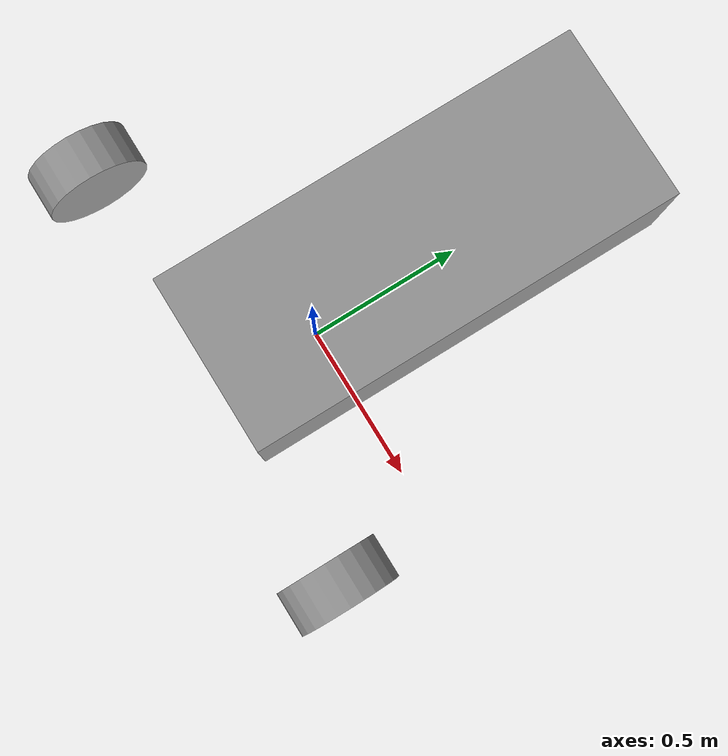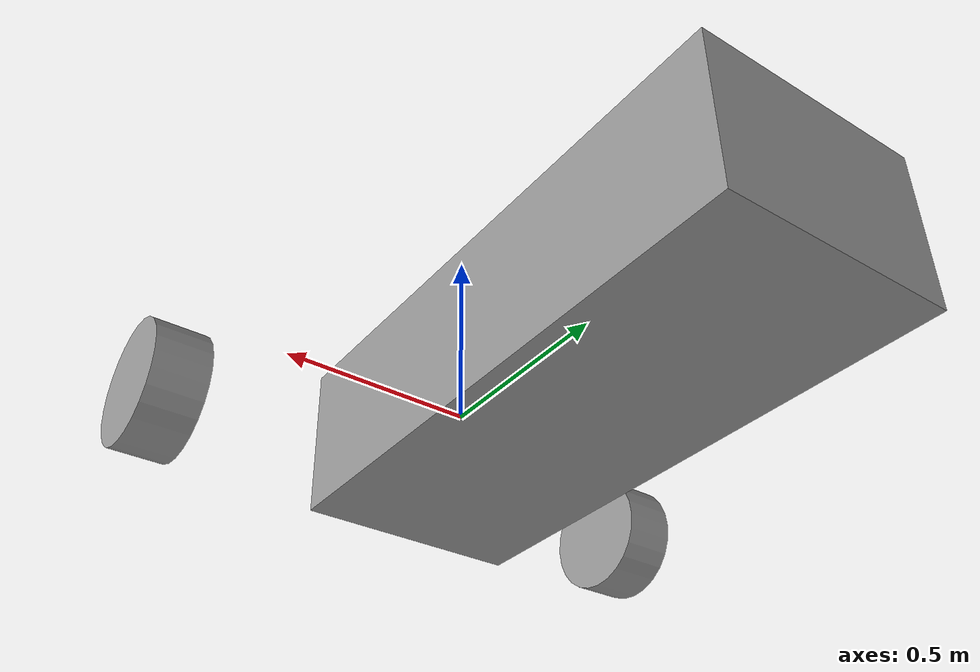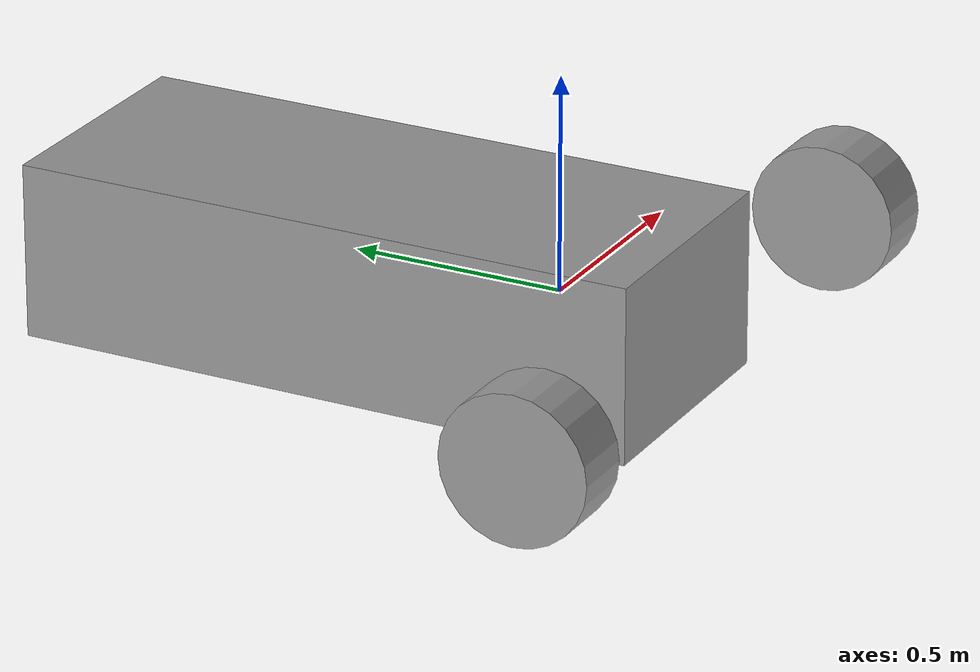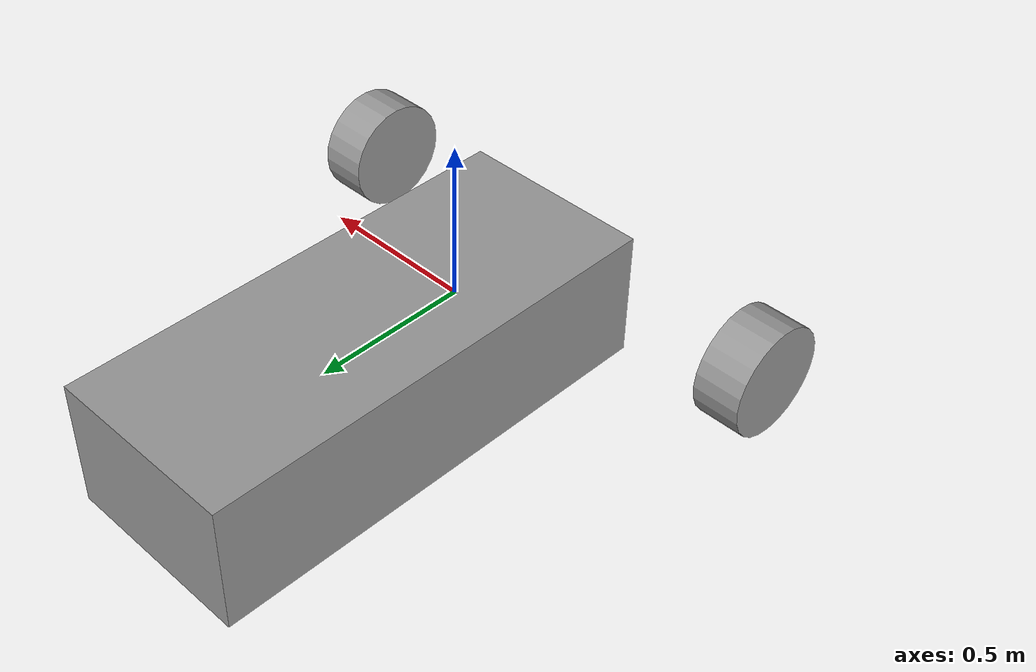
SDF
<?xml version='1.0'?>
<sdf version='1.6'>
  <model name='my_Model'>
    <link name='link_0'>
      <inertial>
        <mass>0.361504</mass>
        <inertia>
          <ixx>0.0704609</ixx>
          <ixy>0</ixy>
          <ixz>0</ixz>
          <iyy>0.0159333</iyy>
          <iyz>0</iyz>
          <izz>0.0764246</izz>
        </inertia>
        <pose frame=''>0 0 0 0 -0 0</pose>
      </inertial>
      <pose frame=''>-0.063761 0.397842 0.008214 0 -0 0</pose>
      <visual name='visual'>
        <pose frame=''>0 0 0 0 -0 0</pose>
        <geometry>
          <box>
            <size>0.602853 1.47426 0.406778</size>
          </box>
        </geometry>
        <material>
          <lighting>1</lighting>
          <script>
            <uri>file://media/materials/scripts/gazebo.material</uri>
            <name>Gazebo/Grey</name>
          </script>
          <emissive>0 0 0 1</emissive>
        </material>
        <transparency>0</transparency>
        <cast_shadows>1</cast_shadows>
      </visual>
      <collision name='collision'>
        <laser_retro>0</laser_retro>
        <max_contacts>10</max_contacts>
        <pose frame=''>0 0 0 0 -0 0</pose>
        <geometry>
          <box>
            <size>0.602853 1.47426 0.406778</size>
          </box>
        </geometry>
        <surface>
          <friction>
            <ode>
              <mu>1</mu>
              <mu2>1</mu2>
              <fdir1>0 0 0</fdir1>
              <slip1>0</slip1>
              <slip2>0</slip2>
            </ode>
            <torsional>
              <coefficient>1</coefficient>
              <patch_radius>0</patch_radius>
              <surface_radius>0</surface_radius>
              <use_patch_radius>1</use_patch_radius>
              <ode>
                <slip>0</slip>
              </ode>
            </torsional>
          </friction>
          <bounce>
            <restitution_coefficient>0</restitution_coefficient>
            <threshold>1e+06</threshold>
          </bounce>
          <contact>
            <collide_without_contact>0</collide_without_contact>
            <collide_without_contact_bitmask>1</collide_without_contact_bitmask>
            <collide_bitmask>1</collide_bitmask>
            <ode>
              <soft_cfm>0</soft_cfm>
              <soft_erp>0.2</soft_erp>
              <kp>1e+13</kp>
              <kd>1</kd>
              <max_vel>0.01</max_vel>
              <min_depth>0</min_depth>
            </ode>
            <bullet>
              <split_impulse>1</split_impulse>
              <split_impulse_penetration_threshold>-0.01</split_impulse_penetration_threshold>
              <soft_cfm>0</soft_cfm>
              <soft_erp>0.2</soft_erp>
              <kp>1e+13</kp>
              <kd>1</kd>
            </bullet>
          </contact>
        </surface>
      </collision>
    </link>
    <link name='link_2'>
      <inertial>
        <mass>0.01718</mass>
        <inertia>
          <ixx>0.000156153</ixx>
          <ixy>0</ixy>
          <ixz>0</ixz>
          <iyy>0.000156153</iyy>
          <iyz>0</iyz>
          <izz>0.000249798</izz>
        </inertia>
        <pose frame=''>0 0 0 0 -0 0</pose>
      </inertial>
      <pose frame=''>0.686239 -0.342158 0.008214 -3.14159 1.56895 -3.14159</pose>
      <visual name='visual'>
        <pose frame=''>0 0 0 0 -0 0</pose>
        <geometry>
          <cylinder>
            <radius>0.170529</radius>
            <length>0.147751</length>
          </cylinder>
        </geometry>
        <material>
          <lighting>1</lighting>
          <script>
            <uri>file://media/materials/scripts/gazebo.material</uri>
            <name>Gazebo/Grey</name>
          </script>
          <emissive>0 0 0 1</emissive>
        </material>
        <transparency>0</transparency>
        <cast_shadows>1</cast_shadows>
      </visual>
      <collision name='collision'>
        <laser_retro>0</laser_retro>
        <max_contacts>10</max_contacts>
        <pose frame=''>0 0 0 0 -0 0</pose>
        <geometry>
          <cylinder>
            <radius>0.170529</radius>
            <length>0.147751</length>
          </cylinder>
        </geometry>
        <surface>
          <friction>
            <ode>
              <mu>1</mu>
              <mu2>1</mu2>
              <fdir1>0 0 0</fdir1>
              <slip1>0</slip1>
              <slip2>0</slip2>
            </ode>
            <torsional>
              <coefficient>1</coefficient>
              <patch_radius>0</patch_radius>
              <surface_radius>0</surface_radius>
              <use_patch_radius>1</use_patch_radius>
              <ode>
                <slip>0</slip>
              </ode>
            </torsional>
          </friction>
          <bounce>
            <restitution_coefficient>0</restitution_coefficient>
            <threshold>1e+06</threshold>
          </bounce>
          <contact>
            <collide_without_contact>0</collide_without_contact>
            <collide_without_contact_bitmask>1</collide_without_contact_bitmask>
            <collide_bitmask>1</collide_bitmask>
            <ode>
              <soft_cfm>0</soft_cfm>
              <soft_erp>0.2</soft_erp>
              <kp>1e+13</kp>
              <kd>1</kd>
              <max_vel>0.01</max_vel>
              <min_depth>0</min_depth>
            </ode>
            <bullet>
              <split_impulse>1</split_impulse>
              <split_impulse_penetration_threshold>-0.01</split_impulse_penetration_threshold>
              <soft_cfm>0</soft_cfm>
              <soft_erp>0.2</soft_erp>
              <kp>1e+13</kp>
              <kd>1</kd>
            </bullet>
          </contact>
        </surface>
      </collision>
    </link>
    <link name='link_2_clone'>
      <inertial>
        <mass>0.01718</mass>
        <inertia>
          <ixx>0.000156153</ixx>
          <ixy>0</ixy>
          <ixz>0</ixz>
          <iyy>0.000156153</iyy>
          <iyz>0</iyz>
          <izz>0.000249798</izz>
        </inertia>
        <pose frame=''>0 0 0 0 -0 0</pose>
      </inertial>
      <pose frame=''>-0.813761 -0.342158 0.008214 3.14159 1.56895 3.14159</pose>
      <visual name='visual'>
        <pose frame=''>0 0 0 0 -0 0</pose>
        <geometry>
          <cylinder>
            <radius>0.170529</radius>
            <length>0.147751</length>
          </cylinder>
        </geometry>
        <material>
          <lighting>1</lighting>
          <script>
            <uri>file://media/materials/scripts/gazebo.material</uri>
            <name>Gazebo/Grey</name>
          </script>
          <emissive>0 0 0 1</emissive>
          <shader type='pixel'/>
        </material>
        <transparency>0</transparency>
        <cast_shadows>1</cast_shadows>
      </visual>
      <collision name='collision'>
        <laser_retro>0</laser_retro>
        <max_contacts>10</max_contacts>
        <pose frame=''>0 0 0 0 -0 0</pose>
        <geometry>
          <cylinder>
            <radius>0.170529</radius>
            <length>0.147751</length>
          </cylinder>
        </geometry>
        <surface>
          <friction>
            <ode>
              <mu>1</mu>
              <mu2>1</mu2>
              <fdir1>0 0 0</fdir1>
              <slip1>0</slip1>
              <slip2>0</slip2>
            </ode>
            <torsional>
              <coefficient>1</coefficient>
              <patch_radius>0</patch_radius>
              <surface_radius>0</surface_radius>
              <use_patch_radius>1</use_patch_radius>
              <ode>
                <slip>0</slip>
              </ode>
            </torsional>
          </friction>
          <bounce>
            <restitution_coefficient>0</restitution_coefficient>
            <threshold>1e+06</threshold>
          </bounce>
          <contact>
            <collide_without_contact>0</collide_without_contact>
            <collide_without_contact_bitmask>1</collide_without_contact_bitmask>
            <collide_bitmask>1</collide_bitmask>
            <ode>
              <soft_cfm>0</soft_cfm>
              <soft_erp>0.2</soft_erp>
              <kp>1e+13</kp>
              <kd>1</kd>
              <max_vel>0.01</max_vel>
              <min_depth>0</min_depth>
            </ode>
            <bullet>
              <split_impulse>1</split_impulse>
              <split_impulse_penetration_threshold>-0.01</split_impulse_penetration_threshold>
              <soft_cfm>0</soft_cfm>
              <soft_erp>0.2</soft_erp>
              <kp>1e+13</kp>
              <kd>1</kd>
            </bullet>
          </contact>
        </surface>
      </collision>
    </link>
    <joint name='link_0_JOINT_0' type='revolute'>
      <parent>link_0</parent>
      <child>link_2</child>
      <pose frame=''>0 0 0 0 -0 0</pose>
      <axis>
        <xyz>1 0 0</xyz>
        <use_parent_model_frame>0</use_parent_model_frame>
        <limit>
          <lower>-1.79769e+308</lower>
          <upper>1.79769e+308</upper>
          <effort>-1</effort>
          <velocity>-1</velocity>
        </limit>
        <dynamics>
          <spring_reference>0</spring_reference>
          <spring_stiffness>0</spring_stiffness>
          <damping>0</damping>
        </dynamics>
      </axis>
      <physics>
        <ode>
          <limit>
            <cfm>0</cfm>
            <erp>0.2</erp>
          </limit>
          <suspension>
            <cfm>0</cfm>
            <erp>0.2</erp>
          </suspension>
        </ode>
      </physics>
    </joint>
    <joint name='link_0_JOINT_1' type='revolute'>
      <parent>link_0</parent>
      <child>link_2_clone</child>
      <pose frame=''>0 0 0 -0.01 0 0</pose>
      <axis>
        <xyz>1 0 0</xyz>
        <use_parent_model_frame>0</use_parent_model_frame>
        <limit>
          <lower>-1.79769e+308</lower>
          <upper>1.79769e+308</upper>
          <effort>-1</effort>
          <velocity>-1</velocity>
        </limit>
        <dynamics>
          <spring_reference>0</spring_reference>
          <spring_stiffness>0</spring_stiffness>
          <damping>0</damping>
        </dynamics>
      </axis>
      <physics>
        <ode>
          <limit>
            <cfm>0</cfm>
            <erp>0.2</erp>
          </limit>
          <suspension>
            <cfm>0</cfm>
            <erp>0.2</erp>
          </suspension>
        </ode>
      </physics>
    </joint>
    <static>0</static>
    <allow_auto_disable>1</allow_auto_disable>
  </model>
</sdf>
